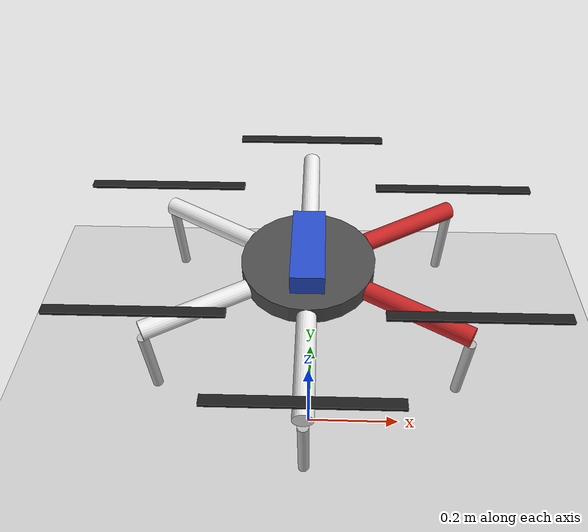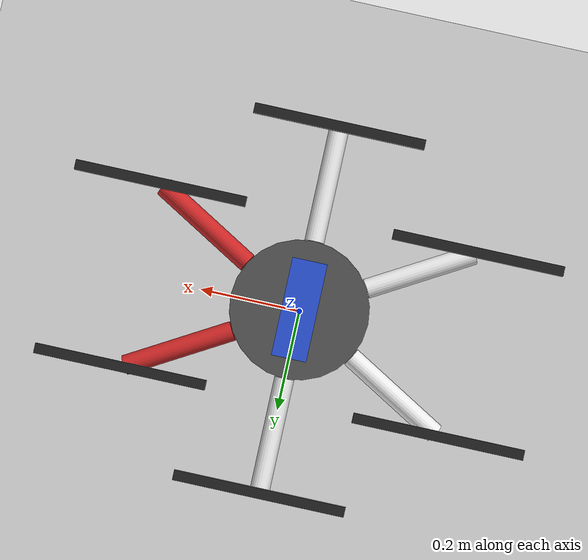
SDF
<?xml version="1.0" ?>
<sdf version="1.5">
  <world name="default">
    <!-- A global light source -->
    <include>
      <uri>model://sun</uri>
    </include>
    <!-- A ground plane -->
    <include>
      <uri>model://ground_plane</uri>
    </include>
    <include>
      <uri>model://mantis_uav</uri>
    </include>
    <physics name='default_physics' default='0' type='ode'>
      <gravity>0 0 -9.8066</gravity>
      <ode>
        <solver>
          <type>quick</type>
          <iters>10</iters>
          <sor>1.3</sor>
          <use_dynamic_moi_rescaling>0</use_dynamic_moi_rescaling>
        </solver>
        <constraints>
          <cfm>0</cfm>
          <erp>0.2</erp>
          <contact_max_correcting_vel>100</contact_max_correcting_vel>
          <contact_surface_layer>0.001</contact_surface_layer>
        </constraints>
      </ode>
      <max_step_size>0.002</max_step_size>
      <real_time_factor>1</real_time_factor>
      <real_time_update_rate>500</real_time_update_rate>
      <magnetic_field>6e-06 2.3e-05 -4.2e-05</magnetic_field>
    </physics>
  </world>
</sdf>

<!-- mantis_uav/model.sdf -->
<sdf version='1.6'>
  <model name='mantis_uav'>
    <link name='base_link'>
      <pose>0 0 0.5 0 0 0</pose>
      <gravity>1</gravity>
      <self_collide>0</self_collide>
      <kinematic>0</kinematic>

	  <inertial>
        <mass>1.5480</mass>
        <inertia>
          <ixx>0.015198135489664</ixx>
          <ixy>0</ixy>
          <ixz>-1.192366728849071e-19</ixz>
          <iyy>0.014353211169664</iyy>
          <iyz>9.175993298526920e-20</iyz>
          <izz>0.027767959346667</izz>
        </inertia>
      </inertial>

      <collision name='collision_base_link'>
        <geometry>
          <cylinder>
            <radius>0.275</radius>
            <length>0.03</length>
          </cylinder>
        </geometry>
      </collision>

	  <visual name='visual_base_link'>
        <geometry>
          <cylinder>
            <radius>0.105</radius>
            <length>0.03</length>
          </cylinder>
        </geometry>
        <material>
          <lighting>1</lighting>
          <script>
            <uri>file://media/materials/scripts/gazebo.material</uri>
            <name>Gazebo/DarkGrey</name>
          </script>
        </material>
      </visual>

      <visual name="visual_motor_arm_1">
        <pose>0 -0.19 0 1.5708 0 3.1416</pose>
        <geometry>
          <cylinder>
            <radius>0.015</radius>
            <length>0.17</length>
          </cylinder>
        </geometry>
        <material>
          <lighting>1</lighting>
          <script>
            <uri>file://media/materials/scripts/gazebo.material</uri>
            <name>Gazebo/White</name>
          </script>
        </material>
      </visual>

      <visual name="visual_motor_arm_2">
        <pose>0 0.19 0 1.5708 0 0</pose>
        <geometry>
          <cylinder>
            <radius>0.015</radius>
            <length>0.17</length>
          </cylinder>
        </geometry>
        <material>
          <lighting>1</lighting>
          <script>
            <uri>file://media/materials/scripts/gazebo.material</uri>
            <name>Gazebo/White</name>
          </script>
        </material>
      </visual>

      <visual name="visual_motor_arm_3">
        <pose>0.165 0.095 0 1.5708 0 2.0944</pose>
        <geometry>
          <cylinder>
            <radius>0.015</radius>
            <length>0.17</length>
          </cylinder>
        </geometry>
        <material>
          <lighting>1</lighting>
          <script>
            <uri>file://media/materials/scripts/gazebo.material</uri>
            <name>Gazebo/Red</name>
          </script>
        </material>
      </visual>

      <visual name="visual_motor_arm_4">
        <pose>-0.165 -0.095 0 1.5708 0 2.0944</pose>
        <geometry>
          <cylinder>
            <radius>0.015</radius>
            <length>0.17</length>
          </cylinder>
        </geometry>
        <material>
          <lighting>1</lighting>
          <script>
            <uri>file://media/materials/scripts/gazebo.material</uri>
            <name>Gazebo/White</name>
          </script>
        </material>
      </visual>

      <visual name="visual_motor_arm_5">
        <pose>0.165 -0.095 0 1.5708 0 1.0472</pose>
        <geometry>
          <cylinder>
            <radius>0.015</radius>
            <length>0.17</length>
          </cylinder>
        </geometry>
        <material>
          <lighting>1</lighting>
          <script>
            <uri>file://media/materials/scripts/gazebo.material</uri>
            <name>Gazebo/Red</name>
          </script>
        </material>
      </visual>

      <visual name="visual_motor_arm_6">
        <pose>-0.165 0.095 0 1.5708 0 1.0472</pose>
        <geometry>
          <cylinder>
            <radius>0.015</radius>
            <length>0.17</length>
          </cylinder>
        </geometry>
        <material>
          <lighting>1</lighting>
          <script>
            <uri>file://media/materials/scripts/gazebo.material</uri>
            <name>Gazebo/White</name>
          </script>
        </material>
      </visual>

      <collision name="collision_skid_1">
        <pose>0 -0.275 -0.075 0 0 0</pose>
        <geometry>
          <cylinder>
            <radius>0.008</radius>
            <length>0.12</length>
          </cylinder>
        </geometry>
      </collision>

      <visual name="visual_skid_1">
        <pose>0 -0.275 -0.075 0 0 0</pose>
        <geometry>
          <cylinder>
            <radius>0.008</radius>
            <length>0.12</length>
          </cylinder>
        </geometry>
      </visual>

      <collision name="collision_skid_2">
        <pose>0 0.275 -0.075 0 0 0</pose>
        <geometry>
          <cylinder>
            <radius>0.008</radius>
            <length>0.12</length>
          </cylinder>
        </geometry>
      </collision>

      <visual name="visual_skid_2">
        <pose>0 0.275 -0.075 0 0 0</pose>
        <geometry>
          <cylinder>
            <radius>0.008</radius>
            <length>0.12</length>
          </cylinder>
        </geometry>
      </visual>

      <collision name="collision_skid_3">
        <pose>0.2382 0.1375 -0.075 0 0 0</pose>
        <geometry>
          <cylinder>
            <radius>0.008</radius>
            <length>0.12</length>
          </cylinder>
        </geometry>
      </collision>

      <visual name="visual_skid_3">
        <pose>0.2382 0.1375 -0.075 0 0 0</pose>
        <geometry>
          <cylinder>
            <radius>0.008</radius>
            <length>0.12</length>
          </cylinder>
        </geometry>
      </visual>

      <collision name="collision_skid_4">
        <pose>-0.2382 -0.1375 -0.075 0 0 0</pose>
        <geometry>
          <cylinder>
            <radius>0.008</radius>
            <length>0.12</length>
          </cylinder>
        </geometry>
      </collision>

      <visual name="visual_skid_4">
        <pose>-0.2382 -0.1375 -0.075 0 0 0</pose>
        <geometry>
          <cylinder>
            <radius>0.008</radius>
            <length>0.12</length>
          </cylinder>
        </geometry>
      </visual>

      <collision name="collision_skid_5">
        <pose>0.2382 -0.1375 -0.075 0 0 0</pose>
        <geometry>
          <cylinder>
            <radius>0.008</radius>
            <length>0.12</length>
          </cylinder>
        </geometry>
      </collision>

      <visual name="visual_skid_5">
        <pose>0.2382 -0.1375 -0.075 0 0 0</pose>
        <geometry>
          <cylinder>
            <radius>0.008</radius>
            <length>0.12</length>
          </cylinder>
        </geometry>
      </visual>

      <collision name="collision_skid_6">
        <pose>-0.2382 0.1375 -0.075 0 0 0</pose>
        <geometry>
          <cylinder>
            <radius>0.008</radius>
            <length>0.12</length>
          </cylinder>
        </geometry>
      </collision>

      <visual name="visual_skid_6">
        <pose>-0.2382 0.1375 -0.075 0 0 0</pose>
        <geometry>
          <cylinder>
            <radius>0.008</radius>
            <length>0.12</length>
          </cylinder>
        </geometry>
      </visual>

      <collision name="collision_battery">
        <pose>0 0 0.032 0 0 0</pose>
        <geometry>
          <box>
            <size>0.052 0.146 0.034</size>
          </box>
        </geometry>
      </collision>

      <visual name="visual_battery">
        <pose>0 0 0.032 0 0 0</pose>
        <geometry>
          <box>
            <size>0.052 0.146 0.034</size>
          </box>
        </geometry>
        <material>
          <lighting>1</lighting>
          <script>
            <uri>file://media/materials/scripts/gazebo.material</uri>
            <name>Gazebo/Blue</name>
          </script>
        </material>
      </visual>
	</link>

    <link name='rotor_1'>
      <pose>0 -0.275 0.5455 0 0 0</pose>
      <gravity>1</gravity>
      <velocity_decay/>
      <self_collide>0</self_collide>

      <inertial>
        <mass>0.005</mass>
        <inertia>
          <ixx>9.75e-07</ixx>
          <ixy>0</ixy>
          <ixz>0</ixz>
          <iyy>0.000273104</iyy>
          <iyz>0</iyz>
          <izz>0.000274004</izz>
        </inertia>
      </inertial>

      <collision name='collision_rotor_1'>
        <geometry>
          <cylinder>
            <length>0.005</length>
            <radius>0.128</radius>
          </cylinder>
        </geometry>
      </collision>

      <visual name='visual_rotor_1'>
        <geometry>
          <box>
            <size>0.256 0.015 0.005</size>
          </box>
        </geometry>
        <material>
          <script>
            <name>Gazebo/Black</name>
            <uri>file://media/materials/scripts/gazebo.material</uri>
          </script>
        </material>
      </visual>
    </link>

    <joint type='revolute' name='joint_rotor_1'>
      <child>rotor_1</child>
      <parent>base_link</parent>
      <axis>
        <xyz>0 0 1</xyz>
        <limit>
          <lower>-1e+16</lower>
          <upper>1e+16</upper>
        </limit>
      </axis>
    </joint>

    <link name='rotor_2'>
      <pose>0 0.275 0.5455 0 0 0</pose>
      <gravity>1</gravity>
      <velocity_decay/>
      <self_collide>0</self_collide>

      <inertial>
        <mass>0.005</mass>
        <inertia>
          <ixx>9.75e-07</ixx>
          <ixy>0</ixy>
          <ixz>0</ixz>
          <iyy>0.000273104</iyy>
          <iyz>0</iyz>
          <izz>0.000274004</izz>
        </inertia>
      </inertial>

      <collision name='collision_rotor_2'>
        <geometry>
          <cylinder>
            <length>0.005</length>
            <radius>0.128</radius>
          </cylinder>
        </geometry>
      </collision>

      <visual name='visual_rotor_2'>
        <geometry>
          <box>
            <size>0.256 0.015 0.005</size>
          </box>
        </geometry>
        <material>
          <script>
            <name>Gazebo/Black</name>
            <uri>file://media/materials/scripts/gazebo.material</uri>
          </script>
        </material>
      </visual>
    </link>

    <joint type='revolute' name='joint_rotor_2'>
      <child>rotor_2</child>
      <parent>base_link</parent>
      <axis>
        <xyz>0 0 1</xyz>
        <limit>
          <lower>-1e+16</lower>
          <upper>1e+16</upper>
        </limit>
      </axis>
    </joint>

    <link name='rotor_3'>
      <pose>0.2382 0.1375 0.5455 0 0 0</pose>
      <gravity>1</gravity>
      <velocity_decay/>
      <self_collide>0</self_collide>

      <inertial>
        <mass>0.005</mass>
        <inertia>
          <ixx>9.75e-07</ixx>
          <ixy>0</ixy>
          <ixz>0</ixz>
          <iyy>0.000273104</iyy>
          <iyz>0</iyz>
          <izz>0.000274004</izz>
        </inertia>
      </inertial>

      <collision name='collision_rotor_3'>
        <geometry>
          <cylinder>
            <length>0.005</length>
            <radius>0.128</radius>
          </cylinder>
        </geometry>
      </collision>

      <visual name='visual_rotor_3'>
        <geometry>
          <box>
            <size>0.256 0.015 0.005</size>
          </box>
        </geometry>
        <material>
          <script>
            <name>Gazebo/Black</name>
            <uri>file://media/materials/scripts/gazebo.material</uri>
          </script>
        </material>
      </visual>
    </link>

    <joint type='revolute' name='joint_rotor_3'>
      <child>rotor_3</child>
      <parent>base_link</parent>
      <axis>
        <xyz>0 0 1</xyz>
        <limit>
          <lower>-1e+16</lower>
          <upper>1e+16</upper>
        </limit>
      </axis>
    </joint>

    <link name='rotor_4'>
      <pose>-0.2382 -0.1375 0.5455 0 0 0</pose>
      <gravity>1</gravity>
      <velocity_decay/>
      <self_collide>0</self_collide>

      <inertial>
        <mass>0.005</mass>
        <inertia>
          <ixx>9.75e-07</ixx>
          <ixy>0</ixy>
          <ixz>0</ixz>
          <iyy>0.000273104</iyy>
          <iyz>0</iyz>
          <izz>0.000274004</izz>
        </inertia>
      </inertial>

      <collision name='collision_rotor_4'>
        <geometry>
          <cylinder>
            <length>0.005</length>
            <radius>0.128</radius>
          </cylinder>
        </geometry>
      </collision>

      <visual name='visual_rotor_4'>
        <geometry>
          <box>
            <size>0.256 0.015 0.005</size>
          </box>
        </geometry>
        <material>
          <script>
            <name>Gazebo/Black</name>
            <uri>file://media/materials/scripts/gazebo.material</uri>
          </script>
        </material>
      </visual>
    </link>

    <joint type='revolute' name='joint_rotor_4'>
      <child>rotor_4</child>
      <parent>base_link</parent>
      <axis>
        <xyz>0 0 1</xyz>
        <limit>
          <lower>-1e+16</lower>
          <upper>1e+16</upper>
        </limit>
      </axis>
    </joint>

    <link name='rotor_5'>
      <pose>0.2382 -0.1375 0.5455 0 0 0</pose>
      <gravity>1</gravity>
      <velocity_decay/>
      <self_collide>0</self_collide>

      <inertial>
        <mass>0.005</mass>
        <inertia>
          <ixx>9.75e-07</ixx>
          <ixy>0</ixy>
          <ixz>0</ixz>
          <iyy>0.000273104</iyy>
          <iyz>0</iyz>
          <izz>0.000274004</izz>
        </inertia>
      </inertial>

      <collision name='collision_rotor_5'>
        <geometry>
          <cylinder>
            <length>0.005</length>
            <radius>0.128</radius>
          </cylinder>
        </geometry>
      </collision>

      <visual name='visual_rotor_5'>
        <geometry>
          <box>
            <size>0.256 0.015 0.005</size>
          </box>
        </geometry>
        <material>
          <script>
            <name>Gazebo/Black</name>
            <uri>file://media/materials/scripts/gazebo.material</uri>
          </script>
        </material>
      </visual>
    </link>

    <joint type='revolute' name='joint_rotor_5'>
      <child>rotor_5</child>
      <parent>base_link</parent>
      <axis>
        <xyz>0 0 1</xyz>
        <limit>
          <lower>-1e+16</lower>
          <upper>1e+16</upper>
        </limit>
      </axis>
    </joint>

    <link name='rotor_6'>
      <pose>-0.2382 0.1375 0.5455 0 0 0</pose>
      <gravity>1</gravity>
      <velocity_decay/>
      <self_collide>0</self_collide>

      <inertial>
        <mass>0.005</mass>
        <inertia>
          <ixx>9.75e-07</ixx>
          <ixy>0</ixy>
          <ixz>0</ixz>
          <iyy>0.000273104</iyy>
          <iyz>0</iyz>
          <izz>0.000274004</izz>
        </inertia>
      </inertial>

      <collision name='collision_rotor_6'>
        <geometry>
          <cylinder>
            <length>0.005</length>
            <radius>0.128</radius>
          </cylinder>
        </geometry>
      </collision>

      <visual name='visual_rotor_6'>
        <geometry>
          <box>
            <size>0.256 0.015 0.005</size>
          </box>
        </geometry>
        <material>
          <script>
            <name>Gazebo/Black</name>
            <uri>file://media/materials/scripts/gazebo.material</uri>
          </script>
        </material>
      </visual>
    </link>

    <joint type='revolute' name='joint_rotor_6'>
      <child>rotor_6</child>
      <parent>base_link</parent>
      <axis>
        <xyz>0 0 1</xyz>
        <limit>
          <lower>-1e+16</lower>
          <upper>1e+16</upper>
        </limit>
      </axis>
    </joint>

	<joint type="fixed" name="joint_body_shoulder">
      <parent>base_link</parent>
      <child>arm_link_shoulder_servo</child>
    </joint>

    <link name="arm_link_shoulder_servo">
      <pose>0 0 0.46175 0 0 0</pose>
      <gravity>1</gravity>
      <self_collide>0</self_collide>
      <kinematic>0</kinematic>

	  <inertial>
        <mass>0.082</mass>
        <inertia>
          <ixx>2.26747e-05</ixx>
          <ixy>0</ixy>
          <ixz>0</ixz>
          <iyy>2.03258e-05</iyy>
          <iyz>0</iyz>
          <izz>1.34497e-05</izz>
        </inertia>
      </inertial>

      <collision name="collision_shoulder">
        <geometry>
          <box>
            <size>0.0285 0.034 0.0465</size>
          </box>
        </geometry>
      </collision>

      <visual name="visual_shoulder">
        <geometry>
          <box>
            <size>0.0285 0.034 0.0465</size>
          </box>
        </geometry>
      </visual>
    </link>

	<joint type="revolute" name="joint_shoulder_upperarm_servo">
      <pose>0 0 0.09 0 0 0</pose>
      <parent>arm_link_shoulder_servo</parent>
      <child>arm_link_upperarm</child>
      <axis>
        <xyz>0 1 0</xyz>
        <dynamics>
          <friction>0</friction>
        </dynamics>
        <limit>
          <lower>-1.57</lower>
          <upper>1.57</upper>
        </limit>
      </axis>
    </joint>

    <link name="arm_link_upperarm">
      <pose>0 0 0.35975 0 0 0</pose>
      <gravity>1</gravity>
      <self_collide>0</self_collide>
      <kinematic>0</kinematic>

	  <inertial>
        <mass>0.008</mass>
        <inertia>
          <ixx>9.826e-06</ixx>
          <ixy>0</ixy>
          <ixz>0</ixz>
          <iyy>9.826e-06</iyy>
          <iyz>0</iyz>
          <izz>4.52e-07</izz>
        </inertia>
      </inertial>

      <collision name="collision_upperarm">
        <geometry>
          <cylinder>
            <radius>0.008</radius>
            <length>0.12</length>
          </cylinder>
        </geometry>
      </collision>

      <visual name="visual_upperarm">
        <geometry>
          <cylinder>
            <radius>0.008</radius>
            <length>0.12</length>
          </cylinder>
        </geometry>
      </visual>
    </link>

	<joint type="fixed" name="joint_upperarm_elbow">
      <parent>arm_link_upperarm</parent>
      <child>arm_link_elbow_servo</child>
    </joint>

    <link name="arm_link_elbow_servo">
      <pose>0 0 0.2765 0 0 0</pose>
      <gravity>1</gravity>
      <self_collide>0</self_collide>
      <kinematic>0</kinematic>

	  <inertial>
        <mass>0.082</mass>
        <inertia>
          <ixx>2.26747e-05</ixx>
          <ixy>0</ixy>
          <ixz>0</ixz>
          <iyy>2.03258e-05</iyy>
          <iyz>0</iyz>
          <izz>1.34497e-05</izz>
        </inertia>
      </inertial>

      <collision name="collision_elbow_servo">
        <geometry>
          <box>
            <size>0.0285 0.034 0.0465</size>
          </box>
        </geometry>
      </collision>

      <visual name="visual_elbow_servo">
        <geometry>
          <box>
            <size>0.0285 0.034 0.0465</size>
          </box>
        </geometry>
      </visual>
    </link>

	<joint type="revolute" name="joint_elbow_forearm_servo">
      <pose>0 0 0.09 0 0 0</pose>
      <parent>arm_link_elbow_servo</parent>
      <child>arm_link_forearm</child>
      <axis>
        <xyz>0 1 0</xyz>
        <dynamics>
          <friction>0</friction>
        </dynamics>
        <limit>
          <lower>-1.57</lower>
          <upper>1.57</upper>
        </limit>
      </axis>
    </joint>

    <link name="arm_link_forearm">
      <pose>0 0 0.1745 0 0 0</pose>
      <gravity>1</gravity>
      <self_collide>0</self_collide>
      <kinematic>0</kinematic>

	  <inertial>
        <mass>0.008</mass>
        <inertia>
          <ixx>9.826e-06</ixx>
          <ixy>0</ixy>
          <ixz>0</ixz>
          <iyy>9.826e-06</iyy>
          <iyz>0</iyz>
          <izz>4.52e-07</izz>
        </inertia>
      </inertial>

      <collision name="collision_forearm">
        <geometry>
          <cylinder>
            <radius>0.008</radius>
            <length>0.12</length>
          </cylinder>
        </geometry>
      </collision>

      <visual name="visual_forearm">
        <geometry>
          <cylinder>
            <radius>0.008</radius>
            <length>0.12</length>
          </cylinder>
        </geometry>
      </visual>
    </link>

    <plugin name="mantis_gazebo_servo" filename="libmantis_gazebo_servo.so"/>

    <plugin name="mantis_gazebo_pwm" filename="libmantis_gazebo_pwm_motor.so"/>

    <plugin name="imu_plugin" filename="libgazebo_ros_imu.so">
      <alwaysOn>true</alwaysOn>
      <frameName>world</frameName>
      <bodyName>base_link</bodyName>
      <topicName>mantis_uav/imu</topicName>
      <serviceName>mantis_uav/imu_service</serviceName>
      <gaussianNoise>0.0</gaussianNoise>
      <updateRate>500.0</updateRate>
    </plugin>

	<plugin name='mantis_gazebo_motor_model_1' filename='libmantis_gazebo_motor_model.so'>
      <robotNamespace></robotNamespace>
      <jointName>joint_rotor_1</jointName>
      <linkName>rotor_1</linkName>
      <turningDirection>cw</turningDirection>
      <timeConstantUp>0.0125</timeConstantUp>
      <timeConstantDown>0.025</timeConstantDown>
      <maxRotVelocity>1500</maxRotVelocity>
      <motorConstant>8.54858e-06</motorConstant>
      <momentConstant>0.06</momentConstant>
      <commandSubTopic>/command/motor_velocity</commandSubTopic>
      <motorNumber>0</motorNumber>
      <rotorDragCoefficient>0.000806428</rotorDragCoefficient>
      <rollingMomentCoefficient>1e-06</rollingMomentCoefficient>
      <motorSpeedPubTopic>/state/motor_speed/1</motorSpeedPubTopic>
      <rotorVelocitySlowdownSim>10</rotorVelocitySlowdownSim>
    </plugin>

	<plugin name='mantis_gazebo_motor_model_2' filename='libmantis_gazebo_motor_model.so'>
      <robotNamespace></robotNamespace>
      <jointName>joint_rotor_2</jointName>
      <linkName>rotor_2</linkName>
      <turningDirection>ccw</turningDirection>
      <timeConstantUp>0.0125</timeConstantUp>
      <timeConstantDown>0.025</timeConstantDown>
      <maxRotVelocity>1500</maxRotVelocity>
      <motorConstant>8.54858e-06</motorConstant>
      <momentConstant>0.06</momentConstant>
      <commandSubTopic>/command/motor_velocity</commandSubTopic>
      <motorNumber>1</motorNumber>
      <rotorDragCoefficient>0.000806428</rotorDragCoefficient>
      <rollingMomentCoefficient>1e-06</rollingMomentCoefficient>
      <motorSpeedPubTopic>/state/motor_speed/2</motorSpeedPubTopic>
      <rotorVelocitySlowdownSim>10</rotorVelocitySlowdownSim>
    </plugin>

	<plugin name='mantis_gazebo_motor_model_3' filename='libmantis_gazebo_motor_model.so'>
      <robotNamespace></robotNamespace>
      <jointName>joint_rotor_3</jointName>
      <linkName>rotor_3</linkName>
      <turningDirection>cw</turningDirection>
      <timeConstantUp>0.0125</timeConstantUp>
      <timeConstantDown>0.025</timeConstantDown>
      <maxRotVelocity>1500</maxRotVelocity>
      <motorConstant>8.54858e-06</motorConstant>
      <momentConstant>0.06</momentConstant>
      <commandSubTopic>/command/motor_velocity</commandSubTopic>
      <motorNumber>2</motorNumber>
      <rotorDragCoefficient>0.000806428</rotorDragCoefficient>
      <rollingMomentCoefficient>1e-06</rollingMomentCoefficient>
      <motorSpeedPubTopic>/state/motor_speed/3</motorSpeedPubTopic>
      <rotorVelocitySlowdownSim>10</rotorVelocitySlowdownSim>
    </plugin>

	<plugin name='mantis_gazebo_motor_model_4' filename='libmantis_gazebo_motor_model.so'>
      <robotNamespace></robotNamespace>
      <jointName>joint_rotor_4</jointName>
      <linkName>rotor_4</linkName>
      <turningDirection>ccw</turningDirection>
      <timeConstantUp>0.0125</timeConstantUp>
      <timeConstantDown>0.025</timeConstantDown>
      <maxRotVelocity>1500</maxRotVelocity>
      <motorConstant>8.54858e-06</motorConstant>
      <momentConstant>0.06</momentConstant>
      <commandSubTopic>/command/motor_velocity</commandSubTopic>
      <motorNumber>3</motorNumber>
      <rotorDragCoefficient>0.000806428</rotorDragCoefficient>
      <rollingMomentCoefficient>1e-06</rollingMomentCoefficient>
      <motorSpeedPubTopic>/state/motor_speed/4</motorSpeedPubTopic>
      <rotorVelocitySlowdownSim>10</rotorVelocitySlowdownSim>
    </plugin>

	<plugin name='mantis_gazebo_motor_model_5' filename='libmantis_gazebo_motor_model.so'>
      <robotNamespace></robotNamespace>
      <jointName>joint_rotor_5</jointName>
      <linkName>rotor_5</linkName>
      <turningDirection>ccw</turningDirection>
      <timeConstantUp>0.0125</timeConstantUp>
      <timeConstantDown>0.025</timeConstantDown>
      <maxRotVelocity>1500</maxRotVelocity>
      <motorConstant>8.54858e-06</motorConstant>
      <momentConstant>0.06</momentConstant>
      <commandSubTopic>/command/motor_velocity</commandSubTopic>
      <motorNumber>4</motorNumber>
      <rotorDragCoefficient>0.000806428</rotorDragCoefficient>
      <rollingMomentCoefficient>1e-06</rollingMomentCoefficient>
      <motorSpeedPubTopic>/state/motor_speed/5</motorSpeedPubTopic>
      <rotorVelocitySlowdownSim>10</rotorVelocitySlowdownSim>
    </plugin>

	<plugin name='mantis_gazebo_motor_model_6' filename='libmantis_gazebo_motor_model.so'>
      <robotNamespace></robotNamespace>
      <jointName>joint_rotor_6</jointName>
      <linkName>rotor_6</linkName>
      <turningDirection>cw</turningDirection>
      <timeConstantUp>0.0125</timeConstantUp>
      <timeConstantDown>0.025</timeConstantDown>
      <maxRotVelocity>1500</maxRotVelocity>
      <motorConstant>8.54858e-06</motorConstant>
      <momentConstant>0.06</momentConstant>
      <commandSubTopic>/command/motor_velocity</commandSubTopic>
      <motorNumber>5</motorNumber>
      <rotorDragCoefficient>0.000806428</rotorDragCoefficient>
      <rollingMomentCoefficient>1e-06</rollingMomentCoefficient>
      <motorSpeedPubTopic>/state/motor_speed/6</motorSpeedPubTopic>
      <rotorVelocitySlowdownSim>10</rotorVelocitySlowdownSim>
    </plugin>

    <static>false</static>
    <allow_auto_disable>1</allow_auto_disable>
  </model>
</sdf>
